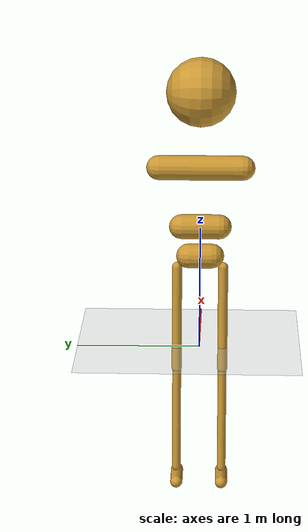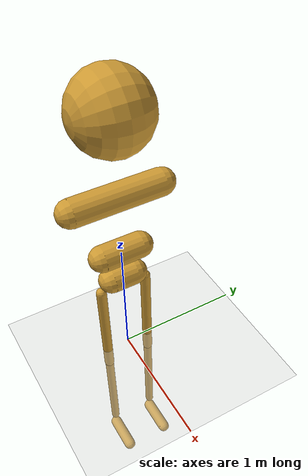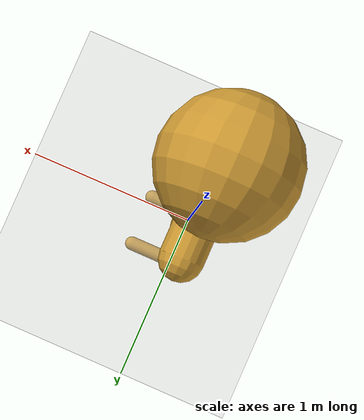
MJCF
<?xml version='1.0' encoding='utf-8'?>
<mujoco model="simple_human">
  <worldbody>
    <geom type="plane" size="1 1 .1" rgba=".8 .8 .8 1" />
    <light diffuse=".8 .8 .8" pos="0 0 3" dir="0 0 -1" />
    <body name="thorax" pos="0 0 1.5">
      <joint type="free" pos="0 0 0" />
      <geom type="capsule" size="0.1 0.334" euler="90 0 0" rgba="0.8 0.6 0.2 1" />
      <body name="head" pos="0 0 0.6120000000000001">
        <joint name="head_x" type="hinge" axis="1 0 0" pos="0 0 -0.278" />
        <joint name="head_y" type="hinge" axis="0 1 0" pos="0 0 -0.278" />
        <joint name="head_z" type="hinge" axis="0 0 1" pos="0 0 -0.278" />
        <geom type="sphere" size="0.278" euler="90 0 0" rgba="0.8 0.6 0.2 1" />
      </body>
      <body name="abdomen" pos="0 0 -0.485">
        <joint name="abdomen_x" type="hinge" axis="1 0 0" pos="0 0 0" />
        <joint name="abdomen_y" type="hinge" axis="0 1 0" pos="0 0 0" />
        <joint name="abdomen_z" type="hinge" axis="0 0 1" pos="0 0 0" />
        <geom type="capsule" size="0.1 0.151" euler="90 0 0" rgba="0.8 0.6 0.2 1" />
        <body name="pelvis" pos="0 0 -0.244">
          <joint name="pelvis_x" type="hinge" axis="1 0 0" pos="0 0 0" />
          <joint name="pelvis_y" type="hinge" axis="0 1 0" pos="0 0 0" />
          <joint name="pelvis_z" type="hinge" axis="0 0 1" pos="0 0 0" />
          <geom type="capsule" size="0.1 0.093" euler="90 0 0" rgba="0.8 0.6 0.2 1" />
          <body name="left_thigh" pos="0 0.186 -0.525">
            <joint name="left_hip_x" type="hinge" axis="1 0 0" pos="0 0 0.432" />
            <joint name="left_hip_y" type="hinge" axis="0 1 0" pos="0 0 0.432" />
            <joint name="left_hip_z" type="hinge" axis="0 0 1" pos="0 0 0.432" />
            <geom type="capsule" size="0.04 0.432" euler="0 0 0" rgba="0.8 0.6 0.2 1" />
            <body name="left_shank" pos="0 0 -0.865">
              <joint name="left_knee_y" type="hinge" axis="0 1 0" pos="0 0 0.433" />
              <geom type="capsule" size="0.035 0.433" euler="0 0 0" rgba="0.8 0.6 0.2 1" />
              <body name="left_foot" pos="0.139 0 -0.5720000000000001">
                <joint name="left_ankle_y" type="hinge" axis="0 1 0" pos="0 0 0.139" />
                <joint name="left_ankle_z" type="hinge" axis="0 0 1" pos="0 0 0.139" />
                <geom type="capsule" size="0.05 0.139" euler="90 90 0" rgba="0.8 0.6 0.2 1" />
              </body>
            </body>
          </body>
          <body name="right_thigh" pos="0 -0.186 -0.525">
            <joint name="right_hip_x" type="hinge" axis="1 0 0" pos="0 0 0.432" />
            <joint name="right_hip_y" type="hinge" axis="0 1 0" pos="0 0 0.432" />
            <joint name="right_hip_z" type="hinge" axis="0 0 1" pos="0 0 0.432" />
            <geom type="capsule" size="0.04 0.432" euler="0 0 0" rgba="0.8 0.6 0.2 1" />
            <body name="right_shank" pos="0 0 -0.865">
              <joint name="right_knee_y" type="hinge" axis="0 1 0" pos="0 0 0.433" />
              <geom type="capsule" size="0.035 0.433" euler="0 0 0" rgba="0.8 0.6 0.2 1" />
              <body name="right_foot" pos="0.139 0 -0.5720000000000001">
                <joint name="right_ankle_y" type="hinge" axis="0 1 0" pos="0 0 0.139" />
                <joint name="right_ankle_z" type="hinge" axis="0 0 1" pos="0 0 0.139" />
                <geom type="capsule" size="0.05 0.139" euler="90 90 0" rgba="0.8 0.6 0.2 1" />
              </body>
            </body>
          </body>
        </body>
      </body>
    </body>
  </worldbody>
  <option gravity="0 0 -9.81" />
</mujoco>
